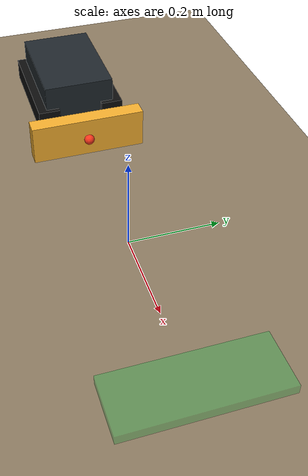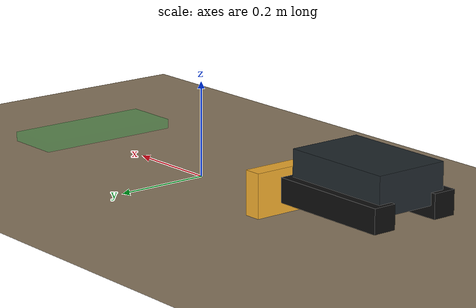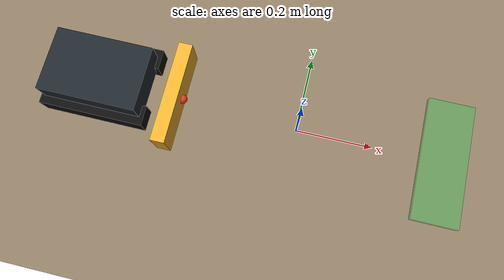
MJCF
<mujoco model="earthmoving_dozer">
  <compiler angle="radian" coordinate="local"/>
  <option timestep="0.005" gravity="0 0 -9.81" integrator="RK4"/>

  <default>
    <geom friction="0.9 0.04 0.01" rgba="0.32 0.36 0.38 1"/>
    <joint damping="2.0" armature="0.01"/>
  </default>

  <worldbody>
    <light directional="true" diffuse="0.8 0.8 0.8" pos="0 0 2"/>
    <geom name="floor" type="plane" size="1.4 0.8 0.05" rgba="0.55 0.48 0.38 1"/>

    <body name="machine" pos="-0.42 0 0.055">
      <joint name="blade_x" type="slide" axis="1 0 0" range="-0.55 0.65" limited="true"/>
      <joint name="blade_y" type="slide" axis="0 1 0" range="-0.25 0.25" limited="true"/>
      <joint name="blade_yaw" type="hinge" axis="0 0 1" range="-0.5 0.5" limited="true"/>

      <geom name="chassis" type="box" pos="-0.08 0 0.06" size="0.12 0.08 0.04" rgba="0.12 0.15 0.17 1"/>
      <geom name="left_track" type="box" pos="-0.08 -0.075 0.02" size="0.13 0.025 0.025" rgba="0.05 0.05 0.05 1"/>
      <geom name="right_track" type="box" pos="-0.08 0.075 0.02" size="0.13 0.025 0.025" rgba="0.05 0.05 0.05 1"/>
      <geom name="blade" type="box" pos="0.1 0 0.005" size="0.018 0.13 0.045" rgba="0.95 0.68 0.18 1"/>
      <site name="blade_tip" pos="0.12 0 0.0" size="0.012" rgba="0.95 0.2 0.1 1"/>
    </body>

    <body name="target_berm" pos="0.38 0 0.02">
      <geom name="target_marker" type="box" size="0.06 0.16 0.01" rgba="0.1 0.75 0.28 0.35" contype="0" conaffinity="0"/>
    </body>
  </worldbody>

  <sensor>
    <jointpos name="blade_x_pos" joint="blade_x"/>
    <jointpos name="blade_y_pos" joint="blade_y"/>
    <jointpos name="blade_yaw_pos" joint="blade_yaw"/>
    <framepos name="blade_tip_pos" objtype="site" objname="blade_tip"/>
  </sensor>
</mujoco>
